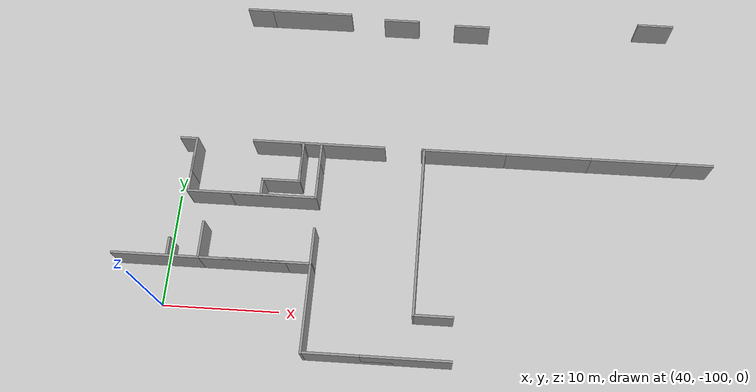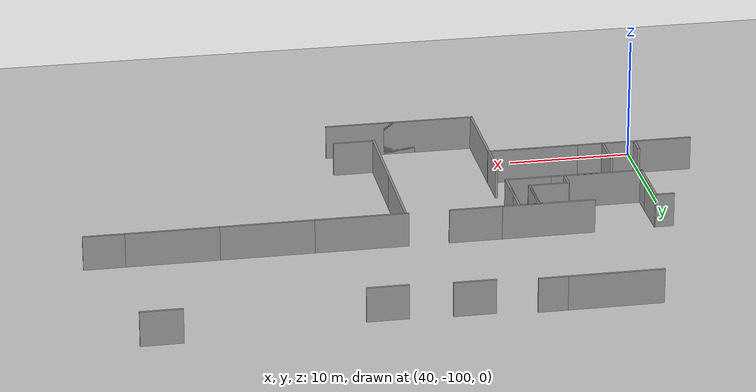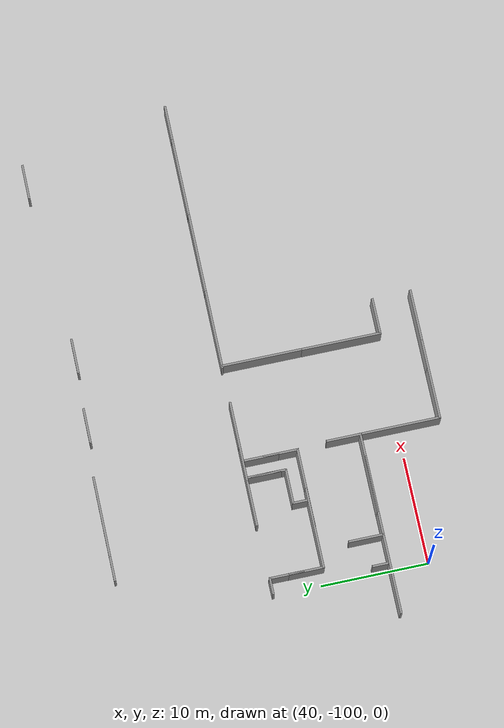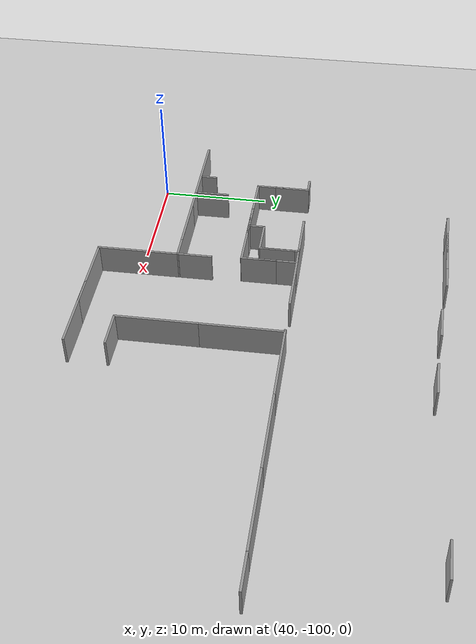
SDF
<sdf version="1.7">
 <world name="default">
  <model name="ground_plane">
   <static>1</static>
   <link name="link">
    <collision name="collision">
     <geometry><plane><normal>0 0 1</normal><size>100 100</size></plane></geometry>
     <surface>
      <contact><collide_bitmask>65535</collide_bitmask></contact>
      <friction><ode><mu>100</mu><mu2>50</mu2></ode></friction>
     </surface>
    </collision>
    <visual name="visual">
     <cast_shadows>0</cast_shadows>
     <geometry><plane><normal>0 0 1</normal><size>100 100</size></plane></geometry>
     <material>
      <script><uri>file://media/materials/scripts/gazebo.material</uri><name>Gazebo/Grey</name></script>
     </material>
    </visual>
   </link>
  </model>
  <model name="grey_wall_clone_1_clone_clone_clone_clone_clone_1_clone_clone">
   <static>1</static>
   <link name="link">
    <pose>0 0 1.4 0 -0 0</pose>
    <collision name="collision"><geometry><box><size>7.5 0.2 2.8</size></box></geometry></collision>
    <visual name="visual">
     <cast_shadows>0</cast_shadows>
     <geometry><box><size>7.5 0.2 2.8</size></box></geometry>
     <material>
      <script>
       <uri>model://grey_wall/materials/scripts</uri>
       <uri>model://grey_wall/materials/textures</uri>
       <name>vrc/grey_wall</name>
      </script>
     </material>
    </visual>
   </link>
   <pose>50.0283 -71.706 0 0 -0 0</pose>
  </model>
  <model name="grey_wall_clone_1_clone_clone_clone_clone_clone_1_clone_clone_0">
   <static>1</static>
   <link name="link">
    <pose>0 0 1.4 0 -0 0</pose>
    <collision name="collision"><geometry><box><size>7.5 0.2 2.8</size></box></geometry></collision>
    <visual name="visual">
     <cast_shadows>0</cast_shadows>
     <geometry><box><size>7.5 0.2 2.8</size></box></geometry>
     <material>
      <script>
       <uri>model://grey_wall/materials/scripts</uri>
       <uri>model://grey_wall/materials/textures</uri>
       <name>vrc/grey_wall</name>
      </script>
     </material>
    </visual>
   </link>
   <pose>47.7034 -71.7047 0 0 -0 0</pose>
  </model>
  <model name="fixed_half_clone_17_clone_5_clone">
   <link name="link">
    <pose>0 0 1.4 0 -0 0</pose>
    <inertial>
     <mass>1</mass>
     <inertia><ixx>1</ixx><ixy>0</ixy><ixz>0</ixz><iyy>1</iyy><iyz>0</iyz><izz>1</izz></inertia>
    </inertial>
    <visual name="visual">
     <cast_shadows>0</cast_shadows>
     <geometry><box><size>3.3 0.2 2.8</size></box></geometry>
     <material>
      <script>
       <uri>model://grey_wall/materials/scripts</uri>
       <uri>model://grey_wall/materials/textures</uri>
       <name>vrc/grey_wall</name>
      </script>
      <shader type="pixel"><normal_map>__default__</normal_map></shader>
      <ambient>1 1 1 1</ambient>
      <diffuse>1 1 1 1</diffuse>
      <specular>0 0 0 1</specular>
      <emissive>0 0 0 1</emissive>
     </material>
    </visual>
    <collision name="collision">
     <geometry><box><size>3.3 0.2 2.8</size></box></geometry>
     <surface>
      <friction>
       <ode><mu>1</mu><mu2>1</mu2><fdir1>0 0 0</fdir1><slip1>0</slip1><slip2>0</slip2></ode>
       <torsional>
        <coefficient>1</coefficient>
        <patch_radius>0</patch_radius>
        <surface_radius>0</surface_radius>
        <use_patch_radius>1</use_patch_radius>
        <ode><slip>0</slip></ode>
       </torsional>
      </friction>
      <bounce><restitution_coefficient>0</restitution_coefficient><threshold>1e+06</threshold></bounce>
      <contact>
       <collide_without_contact>0</collide_without_contact>
       <collide_without_contact_bitmask>1</collide_without_contact_bitmask>
       <collide_bitmask>1</collide_bitmask>
       <ode>
        <soft_cfm>0</soft_cfm>
        <soft_erp>0.2</soft_erp>
        <kp>1e+13</kp>
        <kd>1</kd>
        <max_vel>0.01</max_vel>
        <min_depth>0</min_depth>
       </ode>
       <bullet>
        <split_impulse>1</split_impulse>
        <split_impulse_penetration_threshold>-0.01</split_impulse_penetration_threshold>
        <soft_cfm>0</soft_cfm>
        <soft_erp>0.2</soft_erp>
        <kp>1e+13</kp>
        <kd>1</kd>
       </bullet>
      </contact>
     </surface>
    </collision>
   </link>
   <static>1</static>
   <pose>65.198 -72.3211 0 0 -0 3.14159</pose>
  </model>
  <model name="fixed_half_clone_17_clone_5_clone_0">
   <link name="link">
    <pose>0 0 1.4 0 -0 0</pose>
    <inertial>
     <mass>1</mass>
     <inertia><ixx>1</ixx><ixy>0</ixy><ixz>0</ixz><iyy>1</iyy><iyz>0</iyz><izz>1</izz></inertia>
    </inertial>
    <visual name="visual">
     <cast_shadows>0</cast_shadows>
     <geometry><box><size>3.3 0.2 2.8</size></box></geometry>
     <material>
      <script>
       <uri>model://grey_wall/materials/scripts</uri>
       <uri>model://grey_wall/materials/textures</uri>
       <name>vrc/grey_wall</name>
      </script>
      <shader type="pixel"><normal_map>__default__</normal_map></shader>
      <ambient>1 1 1 1</ambient>
      <diffuse>1 1 1 1</diffuse>
      <specular>0 0 0 1</specular>
      <emissive>0 0 0 1</emissive>
     </material>
    </visual>
    <collision name="collision">
     <geometry><box><size>3.3 0.2 2.8</size></box></geometry>
     <surface>
      <friction>
       <ode><mu>1</mu><mu2>1</mu2><fdir1>0 0 0</fdir1><slip1>0</slip1><slip2>0</slip2></ode>
       <torsional>
        <coefficient>1</coefficient>
        <patch_radius>0</patch_radius>
        <surface_radius>0</surface_radius>
        <use_patch_radius>1</use_patch_radius>
        <ode><slip>0</slip></ode>
       </torsional>
      </friction>
      <bounce><restitution_coefficient>0</restitution_coefficient><threshold>1e+06</threshold></bounce>
      <contact>
       <collide_without_contact>0</collide_without_contact>
       <collide_without_contact_bitmask>1</collide_without_contact_bitmask>
       <collide_bitmask>1</collide_bitmask>
       <ode>
        <soft_cfm>0</soft_cfm>
        <soft_erp>0.2</soft_erp>
        <kp>1e+13</kp>
        <kd>1</kd>
        <max_vel>0.01</max_vel>
        <min_depth>0</min_depth>
       </ode>
       <bullet>
        <split_impulse>1</split_impulse>
        <split_impulse_penetration_threshold>-0.01</split_impulse_penetration_threshold>
        <soft_cfm>0</soft_cfm>
        <soft_erp>0.2</soft_erp>
        <kp>1e+13</kp>
        <kd>1</kd>
       </bullet>
      </contact>
     </surface>
    </collision>
   </link>
   <static>1</static>
   <pose>58.561 -72.0958 0 0 -0 3.14159</pose>
  </model>
  <model name="fixed_half_clone_5_clone_1_clone_clone_0">
   <link name="link">
    <pose>0 0 1.4 0 -0 0</pose>
    <inertial>
     <mass>1</mass>
     <inertia><ixx>1</ixx><ixy>0</ixy><ixz>0</ixz><iyy>1</iyy><iyz>0</iyz><izz>1</izz></inertia>
    </inertial>
    <visual name="visual">
     <cast_shadows>0</cast_shadows>
     <geometry><box><size>3.3 0.2 2.8</size></box></geometry>
     <material>
      <script>
       <uri>model://grey_wall/materials/scripts</uri>
       <uri>model://grey_wall/materials/textures</uri>
       <name>vrc/grey_wall</name>
      </script>
      <shader type="pixel"><normal_map>__default__</normal_map></shader>
      <ambient>1 1 1 1</ambient>
      <diffuse>1 1 1 1</diffuse>
      <specular>0 0 0 1</specular>
      <emissive>0 0 0 1</emissive>
     </material>
    </visual>
    <collision name="collision">
     <geometry><box><size>3.3 0.2 2.8</size></box></geometry>
     <surface>
      <friction>
       <ode><mu>1</mu><mu2>1</mu2><fdir1>0 0 0</fdir1><slip1>0</slip1><slip2>0</slip2></ode>
       <torsional>
        <coefficient>1</coefficient>
        <patch_radius>0</patch_radius>
        <surface_radius>0</surface_radius>
        <use_patch_radius>1</use_patch_radius>
        <ode><slip>0</slip></ode>
       </torsional>
      </friction>
      <bounce><restitution_coefficient>0</restitution_coefficient><threshold>1e+06</threshold></bounce>
      <contact>
       <collide_without_contact>0</collide_without_contact>
       <collide_without_contact_bitmask>1</collide_without_contact_bitmask>
       <collide_bitmask>1</collide_bitmask>
       <ode>
        <soft_cfm>0</soft_cfm>
        <soft_erp>0.2</soft_erp>
        <kp>1e+13</kp>
        <kd>1</kd>
        <max_vel>0.01</max_vel>
        <min_depth>0</min_depth>
       </ode>
       <bullet>
        <split_impulse>1</split_impulse>
        <split_impulse_penetration_threshold>-0.01</split_impulse_penetration_threshold>
        <soft_cfm>0</soft_cfm>
        <soft_erp>0.2</soft_erp>
        <kp>1e+13</kp>
        <kd>1</kd>
       </bullet>
      </contact>
     </surface>
    </collision>
   </link>
   <static>1</static>
   <pose>82.4265 -71.172 0 0 -0 3.14159</pose>
  </model>
  <model name="grey_wall_clone_1_clone_2_clone_clone_clone_clone_clone_clone_clone_3_clone_0_clone_0_clone_5_clone_2_clone_2_clone_clone_10">
   <static>1</static>
   <link name="link">
    <pose>0 0 1.4 0 -0 0</pose>
    <collision name="collision"><geometry><box><size>7.5 0.2 2.8</size></box></geometry></collision>
    <visual name="visual">
     <cast_shadows>0</cast_shadows>
     <geometry><box><size>7.5 0.2 2.8</size></box></geometry>
     <material>
      <script>
       <uri>model://grey_wall/materials/scripts</uri>
       <uri>model://grey_wall/materials/textures</uri>
       <name>vrc/grey_wall</name>
      </script>
     </material>
    </visual>
   </link>
   <pose>79.9304 -85.3182 0 0 -0 0</pose>
  </model>
  <model name="grey_wall_clone_1_clone_2_clone_clone_clone_clone_clone_clone_clone_3_clone_0_clone_0_clone_5_clone_2_clone_2_clone_clone_11">
   <static>1</static>
   <link name="link">
    <pose>0 0 1.4 0 -0 0</pose>
    <collision name="collision"><geometry><box><size>7.5 0.2 2.8</size></box></geometry></collision>
    <visual name="visual">
     <cast_shadows>0</cast_shadows>
     <geometry><box><size>7.5 0.2 2.8</size></box></geometry>
     <material>
      <script>
       <uri>model://grey_wall/materials/scripts</uri>
       <uri>model://grey_wall/materials/textures</uri>
       <name>vrc/grey_wall</name>
      </script>
     </material>
    </visual>
   </link>
   <pose>72.4523 -85.3249 0 0 -0 0</pose>
  </model>
  <model name="grey_wall_clone_1_clone_2_clone_clone_clone_clone_clone_clone_clone_3_clone_0_clone_0_clone_5_clone_2_clone_2_clone_clone_12">
   <static>1</static>
   <link name="link">
    <pose>0 0 1.4 0 -0 0</pose>
    <collision name="collision"><geometry><box><size>7.5 0.2 2.8</size></box></geometry></collision>
    <visual name="visual">
     <cast_shadows>0</cast_shadows>
     <geometry><box><size>7.5 0.2 2.8</size></box></geometry>
     <material>
      <script>
       <uri>model://grey_wall/materials/scripts</uri>
       <uri>model://grey_wall/materials/textures</uri>
       <name>vrc/grey_wall</name>
      </script>
     </material>
    </visual>
   </link>
   <pose>64.9732 -85.3316 0 0 -0 0</pose>
  </model>
  <model name="grey_wall_clone_1_clone_2_clone_clone_clone_clone_clone_clone_clone_3_clone_0_clone_0_clone_5_clone_2_clone_2_clone_clone_14">
   <static>1</static>
   <link name="link">
    <pose>0 0 1.4 0 -0 0</pose>
    <collision name="collision"><geometry><box><size>7.5 0.2 2.8</size></box></geometry></collision>
    <visual name="visual">
     <cast_shadows>0</cast_shadows>
     <geometry><box><size>7.5 0.2 2.8</size></box></geometry>
     <material>
      <script>
       <uri>model://grey_wall/materials/scripts</uri>
       <uri>model://grey_wall/materials/textures</uri>
       <name>vrc/grey_wall</name>
      </script>
     </material>
    </visual>
   </link>
   <pose>49.9828 -85.3356 0 0 -0 0</pose>
  </model>
  <model name="fixed_half_clone_5_clone_1_clone_clone_0_clone">
   <link name="link">
    <pose>0 0 1.4 0 -0 0</pose>
    <inertial>
     <mass>1</mass>
     <inertia><ixx>1</ixx><ixy>0</ixy><ixz>0</ixz><iyy>1</iyy><iyz>0</iyz><izz>1</izz></inertia>
    </inertial>
    <visual name="visual">
     <cast_shadows>0</cast_shadows>
     <geometry><box><size>3.3 0.2 2.8</size></box></geometry>
     <material>
      <script>
       <uri>model://grey_wall/materials/scripts</uri>
       <uri>model://grey_wall/materials/textures</uri>
       <name>vrc/grey_wall</name>
      </script>
      <shader type="pixel"><normal_map>__default__</normal_map></shader>
      <ambient>1 1 1 1</ambient>
      <diffuse>1 1 1 1</diffuse>
      <specular>0 0 0 1</specular>
      <emissive>0 0 0 1</emissive>
     </material>
    </visual>
    <collision name="collision">
     <geometry><box><size>3.3 0.2 2.8</size></box></geometry>
     <surface>
      <friction>
       <ode><mu>1</mu><mu2>1</mu2><fdir1>0 0 0</fdir1><slip1>0</slip1><slip2>0</slip2></ode>
       <torsional>
        <coefficient>1</coefficient>
        <patch_radius>0</patch_radius>
        <surface_radius>0</surface_radius>
        <use_patch_radius>1</use_patch_radius>
        <ode><slip>0</slip></ode>
       </torsional>
      </friction>
      <bounce><restitution_coefficient>0</restitution_coefficient><threshold>1e+06</threshold></bounce>
      <contact>
       <collide_without_contact>0</collide_without_contact>
       <collide_without_contact_bitmask>1</collide_without_contact_bitmask>
       <collide_bitmask>1</collide_bitmask>
       <ode>
        <soft_cfm>0</soft_cfm>
        <soft_erp>0.2</soft_erp>
        <kp>1e+13</kp>
        <kd>1</kd>
        <max_vel>0.01</max_vel>
        <min_depth>0</min_depth>
       </ode>
       <bullet>
        <split_impulse>1</split_impulse>
        <split_impulse_penetration_threshold>-0.01</split_impulse_penetration_threshold>
        <soft_cfm>0</soft_cfm>
        <soft_erp>0.2</soft_erp>
        <kp>1e+13</kp>
        <kd>1</kd>
       </bullet>
      </contact>
     </surface>
    </collision>
   </link>
   <static>1</static>
   <pose>85.2427 -85.3176 0 0 -0 3.14159</pose>
  </model>
  <model name="grey_wall_clone_1_clone_2_clone_clone_clone_clone_clone_clone_clone_3_clone_0_clone_0_clone_5_clone_2_clone_2_clone_clone_17_clone_clone">
   <static>1</static>
   <link name="link">
    <pose>0 0 1.4 0 -0 0</pose>
    <collision name="collision"><geometry><box><size>7.5 0.2 2.8</size></box></geometry></collision>
    <visual name="visual">
     <cast_shadows>0</cast_shadows>
     <geometry><box><size>7.5 0.2 2.8</size></box></geometry>
     <material>
      <script>
       <uri>model://grey_wall/materials/scripts</uri>
       <uri>model://grey_wall/materials/textures</uri>
       <name>vrc/grey_wall</name>
      </script>
     </material>
    </visual>
   </link>
   <pose>39.408 -96.3773 0 0 -0 0</pose>
  </model>
  <model name="fixed_half_clone_8_clone_clone_6_clone_0_clone_2_clone_clone">
   <link name="link">
    <pose>0 0 1.4 0 -0 0</pose>
    <inertial>
     <mass>1</mass>
     <inertia><ixx>1</ixx><ixy>0</ixy><ixz>0</ixz><iyy>1</iyy><iyz>0</iyz><izz>1</izz></inertia>
    </inertial>
    <visual name="visual">
     <cast_shadows>0</cast_shadows>
     <geometry><box><size>3.3 0.2 2.8</size></box></geometry>
     <material>
      <script>
       <uri>model://grey_wall/materials/scripts</uri>
       <uri>model://grey_wall/materials/textures</uri>
       <name>vrc/grey_wall</name>
      </script>
      <shader type="pixel"><normal_map>__default__</normal_map></shader>
      <ambient>1 1 1 1</ambient>
      <diffuse>1 1 1 1</diffuse>
      <specular>0 0 0 1</specular>
      <emissive>0 0 0 1</emissive>
     </material>
    </visual>
    <collision name="collision">
     <geometry><box><size>3.3 0.2 2.8</size></box></geometry>
     <surface>
      <friction>
       <ode><mu>1</mu><mu2>1</mu2><fdir1>0 0 0</fdir1><slip1>0</slip1><slip2>0</slip2></ode>
       <torsional>
        <coefficient>1</coefficient>
        <patch_radius>0</patch_radius>
        <surface_radius>0</surface_radius>
        <use_patch_radius>1</use_patch_radius>
        <ode><slip>0</slip></ode>
       </torsional>
      </friction>
      <bounce><restitution_coefficient>0</restitution_coefficient><threshold>1e+06</threshold></bounce>
      <contact>
       <collide_without_contact>0</collide_without_contact>
       <collide_without_contact_bitmask>1</collide_without_contact_bitmask>
       <collide_bitmask>1</collide_bitmask>
       <ode>
        <soft_cfm>0</soft_cfm>
        <soft_erp>0.2</soft_erp>
        <kp>1e+13</kp>
        <kd>1</kd>
        <max_vel>0.01</max_vel>
        <min_depth>0</min_depth>
       </ode>
       <bullet>
        <split_impulse>1</split_impulse>
        <split_impulse_penetration_threshold>-0.01</split_impulse_penetration_threshold>
        <soft_cfm>0</soft_cfm>
        <soft_erp>0.2</soft_erp>
        <kp>1e+13</kp>
        <kd>1</kd>
       </bullet>
      </contact>
     </surface>
    </collision>
   </link>
   <static>1</static>
   <pose>43.0579 -94.793 0 0 0 -1.5708</pose>
  </model>
  <model name="fixed_half_clone_8_clone_clone_6_clone_0_clone_2_clone_clone_clone">
   <link name="link">
    <pose>0 0 1.4 0 -0 0</pose>
    <inertial>
     <mass>1</mass>
     <inertia><ixx>1</ixx><ixy>0</ixy><ixz>0</ixz><iyy>1</iyy><iyz>0</iyz><izz>1</izz></inertia>
    </inertial>
    <visual name="visual">
     <cast_shadows>0</cast_shadows>
     <geometry><box><size>3.3 0.2 2.8</size></box></geometry>
     <material>
      <script>
       <uri>model://grey_wall/materials/scripts</uri>
       <uri>model://grey_wall/materials/textures</uri>
       <name>vrc/grey_wall</name>
      </script>
      <shader type="pixel"><normal_map>__default__</normal_map></shader>
      <ambient>1 1 1 1</ambient>
      <diffuse>1 1 1 1</diffuse>
      <specular>0 0 0 1</specular>
      <emissive>0 0 0 1</emissive>
     </material>
    </visual>
    <collision name="collision">
     <geometry><box><size>3.3 0.2 2.8</size></box></geometry>
     <surface>
      <friction>
       <ode><mu>1</mu><mu2>1</mu2><fdir1>0 0 0</fdir1><slip1>0</slip1><slip2>0</slip2></ode>
       <torsional>
        <coefficient>1</coefficient>
        <patch_radius>0</patch_radius>
        <surface_radius>0</surface_radius>
        <use_patch_radius>1</use_patch_radius>
        <ode><slip>0</slip></ode>
       </torsional>
      </friction>
      <bounce><restitution_coefficient>0</restitution_coefficient><threshold>1e+06</threshold></bounce>
      <contact>
       <collide_without_contact>0</collide_without_contact>
       <collide_without_contact_bitmask>1</collide_without_contact_bitmask>
       <collide_bitmask>1</collide_bitmask>
       <ode>
        <soft_cfm>0</soft_cfm>
        <soft_erp>0.2</soft_erp>
        <kp>1e+13</kp>
        <kd>1</kd>
        <max_vel>0.01</max_vel>
        <min_depth>0</min_depth>
       </ode>
       <bullet>
        <split_impulse>1</split_impulse>
        <split_impulse_penetration_threshold>-0.01</split_impulse_penetration_threshold>
        <soft_cfm>0</soft_cfm>
        <soft_erp>0.2</soft_erp>
        <kp>1e+13</kp>
        <kd>1</kd>
       </bullet>
      </contact>
     </surface>
    </collision>
   </link>
   <static>1</static>
   <pose>41.2616 -87.0183 0 0 0 -1.5708</pose>
  </model>
  <model name="fixed_half_clone_8_clone_clone_6_clone_0_clone_2_clone_clone_clone_0">
   <link name="link">
    <pose>0 0 1.4 0 -0 0</pose>
    <inertial>
     <mass>1</mass>
     <inertia><ixx>1</ixx><ixy>0</ixy><ixz>0</ixz><iyy>1</iyy><iyz>0</iyz><izz>1</izz></inertia>
    </inertial>
    <visual name="visual">
     <cast_shadows>0</cast_shadows>
     <geometry><box><size>3.3 0.2 2.8</size></box></geometry>
     <material>
      <script>
       <uri>model://grey_wall/materials/scripts</uri>
       <uri>model://grey_wall/materials/textures</uri>
       <name>vrc/grey_wall</name>
      </script>
      <shader type="pixel"><normal_map>__default__</normal_map></shader>
      <ambient>1 1 1 1</ambient>
      <diffuse>1 1 1 1</diffuse>
      <specular>0 0 0 1</specular>
      <emissive>0 0 0 1</emissive>
     </material>
    </visual>
    <collision name="collision">
     <geometry><box><size>3.3 0.2 2.8</size></box></geometry>
     <surface>
      <friction>
       <ode><mu>1</mu><mu2>1</mu2><fdir1>0 0 0</fdir1><slip1>0</slip1><slip2>0</slip2></ode>
       <torsional>
        <coefficient>1</coefficient>
        <patch_radius>0</patch_radius>
        <surface_radius>0</surface_radius>
        <use_patch_radius>1</use_patch_radius>
        <ode><slip>0</slip></ode>
       </torsional>
      </friction>
      <bounce><restitution_coefficient>0</restitution_coefficient><threshold>1e+06</threshold></bounce>
      <contact>
       <collide_without_contact>0</collide_without_contact>
       <collide_without_contact_bitmask>1</collide_without_contact_bitmask>
       <collide_bitmask>1</collide_bitmask>
       <ode>
        <soft_cfm>0</soft_cfm>
        <soft_erp>0.2</soft_erp>
        <kp>1e+13</kp>
        <kd>1</kd>
        <max_vel>0.01</max_vel>
        <min_depth>0</min_depth>
       </ode>
       <bullet>
        <split_impulse>1</split_impulse>
        <split_impulse_penetration_threshold>-0.01</split_impulse_penetration_threshold>
        <soft_cfm>0</soft_cfm>
        <soft_erp>0.2</soft_erp>
        <kp>1e+13</kp>
        <kd>1</kd>
       </bullet>
      </contact>
     </surface>
    </collision>
   </link>
   <static>1</static>
   <pose>41.254 -88.8528 0 0 0 -1.5708</pose>
  </model>
  <model name="grey_wall_clone_1_clone_2_clone_clone_clone_clone_clone_clone_clone_3_clone_0_clone_0_clone_5_clone_2_clone_2_clone_clone_15_clone">
   <static>1</static>
   <link name="link">
    <pose>0 0 1.4 0 -0 0</pose>
    <collision name="collision"><geometry><box><size>7.5 0.2 2.8</size></box></geometry></collision>
    <visual name="visual">
     <cast_shadows>0</cast_shadows>
     <geometry><box><size>7.5 0.2 2.8</size></box></geometry>
     <material>
      <script>
       <uri>model://grey_wall/materials/scripts</uri>
       <uri>model://grey_wall/materials/textures</uri>
       <name>vrc/grey_wall</name>
      </script>
     </material>
    </visual>
   </link>
   <pose>44.9408 -90.4207 0 0 -0 0</pose>
  </model>
  <model name="half_wall_clone_0_clone_clone_clone_6_clone_clone_clone_1_clone">
   <link name="link">
    <pose>0 0 1.4 0 -0 0</pose>
    <inertial>
     <mass>1</mass>
     <inertia><ixx>1</ixx><ixy>0</ixy><ixz>0</ixz><iyy>1</iyy><iyz>0</iyz><izz>1</izz></inertia>
    </inertial>
    <visual name="visual">
     <cast_shadows>0</cast_shadows>
     <geometry><box><size>1.5 0.2 2.8</size></box></geometry>
     <material>
      <script>
       <uri>model://grey_wall/materials/scripts</uri>
       <uri>model://grey_wall/materials/textures</uri>
       <name>vrc/grey_wall</name>
      </script>
      <shader type="pixel"><normal_map>__default__</normal_map></shader>
      <ambient>1 1 1 1</ambient>
      <diffuse>1 1 1 1</diffuse>
      <specular>0 0 0 1</specular>
      <emissive>0 0 0 1</emissive>
     </material>
    </visual>
    <collision name="collision">
     <geometry><box><size>1.5 0.2 2.8</size></box></geometry>
     <surface>
      <friction>
       <ode><mu>1</mu><mu2>1</mu2><fdir1>0 0 0</fdir1><slip1>0</slip1><slip2>0</slip2></ode>
       <torsional>
        <coefficient>1</coefficient>
        <patch_radius>0</patch_radius>
        <surface_radius>0</surface_radius>
        <use_patch_radius>1</use_patch_radius>
        <ode><slip>0</slip></ode>
       </torsional>
      </friction>
      <bounce><restitution_coefficient>0</restitution_coefficient><threshold>1e+06</threshold></bounce>
      <contact>
       <collide_without_contact>0</collide_without_contact>
       <collide_without_contact_bitmask>1</collide_without_contact_bitmask>
       <collide_bitmask>1</collide_bitmask>
       <ode>
        <soft_cfm>0</soft_cfm>
        <soft_erp>0.2</soft_erp>
        <kp>1e+13</kp>
        <kd>1</kd>
        <max_vel>0.01</max_vel>
        <min_depth>0</min_depth>
       </ode>
       <bullet>
        <split_impulse>1</split_impulse>
        <split_impulse_penetration_threshold>-0.01</split_impulse_penetration_threshold>
        <soft_cfm>0</soft_cfm>
        <soft_erp>0.2</soft_erp>
        <kp>1e+13</kp>
        <kd>1</kd>
       </bullet>
      </contact>
     </surface>
    </collision>
   </link>
   <static>1</static>
   <pose>40.3953 -95.5023 0 0 0 -1.5708</pose>
  </model>
  <model name="half_wall_clone_0_clone_clone_clone_clone_clone_0_clone_clone">
   <link name="link">
    <pose>0 0 1.4 0 -0 0</pose>
    <inertial>
     <mass>1</mass>
     <inertia><ixx>1</ixx><ixy>0</ixy><ixz>0</ixz><iyy>1</iyy><iyz>0</iyz><izz>1</izz></inertia>
    </inertial>
    <visual name="visual">
     <cast_shadows>0</cast_shadows>
     <geometry><box><size>1.5 0.2 2.8</size></box></geometry>
     <material>
      <script>
       <uri>model://grey_wall/materials/scripts</uri>
       <uri>model://grey_wall/materials/textures</uri>
       <name>vrc/grey_wall</name>
      </script>
      <shader type="pixel"><normal_map>__default__</normal_map></shader>
      <ambient>1 1 1 1</ambient>
      <diffuse>1 1 1 1</diffuse>
      <specular>0 0 0 1</specular>
      <emissive>0 0 0 1</emissive>
     </material>
    </visual>
    <collision name="collision">
     <geometry><box><size>1.5 0.2 2.8</size></box></geometry>
     <surface>
      <friction>
       <ode><mu>1</mu><mu2>1</mu2><fdir1>0 0 0</fdir1><slip1>0</slip1><slip2>0</slip2></ode>
       <torsional>
        <coefficient>1</coefficient>
        <patch_radius>0</patch_radius>
        <surface_radius>0</surface_radius>
        <use_patch_radius>1</use_patch_radius>
        <ode><slip>0</slip></ode>
       </torsional>
      </friction>
      <bounce><restitution_coefficient>0</restitution_coefficient><threshold>1e+06</threshold></bounce>
      <contact>
       <collide_without_contact>0</collide_without_contact>
       <collide_without_contact_bitmask>1</collide_without_contact_bitmask>
       <collide_bitmask>1</collide_bitmask>
       <ode>
        <soft_cfm>0</soft_cfm>
        <soft_erp>0.2</soft_erp>
        <kp>1e+13</kp>
        <kd>1</kd>
        <max_vel>0.01</max_vel>
        <min_depth>0</min_depth>
       </ode>
       <bullet>
        <split_impulse>1</split_impulse>
        <split_impulse_penetration_threshold>-0.01</split_impulse_penetration_threshold>
        <soft_cfm>0</soft_cfm>
        <soft_erp>0.2</soft_erp>
        <kp>1e+13</kp>
        <kd>1</kd>
       </bullet>
      </contact>
     </surface>
    </collision>
   </link>
   <static>1</static>
   <pose>40.5224 -85.4563 0 0 -0 3.14159</pose>
  </model>
  <model name="grey_wall_clone_1_clone_2_clone_clone_clone_clone_clone_clone_clone_3_clone_0_clone_0_clone_5_clone_2_clone_2_clone_clone_15_clone_clone">
   <static>1</static>
   <link name="link">
    <pose>0 0 1.4 0 -0 0</pose>
    <collision name="collision"><geometry><box><size>7.5 0.2 2.8</size></box></geometry></collision>
    <visual name="visual">
     <cast_shadows>0</cast_shadows>
     <geometry><box><size>7.5 0.2 2.8</size></box></geometry>
     <material>
      <script>
       <uri>model://grey_wall/materials/scripts</uri>
       <uri>model://grey_wall/materials/textures</uri>
       <name>vrc/grey_wall</name>
      </script>
     </material>
    </visual>
   </link>
   <pose>48.7128 -90.4385 0 0 -0 0</pose>
  </model>
  <model name="fixed_half_clone_8_clone_clone_6_clone_0_clone_2_clone_clone_clone_0_clone">
   <link name="link">
    <pose>0 0 1.4 0 -0 0</pose>
    <inertial>
     <mass>1</mass>
     <inertia><ixx>1</ixx><ixy>0</ixy><ixz>0</ixz><iyy>1</iyy><iyz>0</iyz><izz>1</izz></inertia>
    </inertial>
    <visual name="visual">
     <cast_shadows>0</cast_shadows>
     <geometry><box><size>3.3 0.2 2.8</size></box></geometry>
     <material>
      <script>
       <uri>model://grey_wall/materials/scripts</uri>
       <uri>model://grey_wall/materials/textures</uri>
       <name>vrc/grey_wall</name>
      </script>
      <shader type="pixel"><normal_map>__default__</normal_map></shader>
      <ambient>1 1 1 1</ambient>
      <diffuse>1 1 1 1</diffuse>
      <specular>0 0 0 1</specular>
      <emissive>0 0 0 1</emissive>
     </material>
    </visual>
    <collision name="collision">
     <geometry><box><size>3.3 0.2 2.8</size></box></geometry>
     <surface>
      <friction>
       <ode><mu>1</mu><mu2>1</mu2><fdir1>0 0 0</fdir1><slip1>0</slip1><slip2>0</slip2></ode>
       <torsional>
        <coefficient>1</coefficient>
        <patch_radius>0</patch_radius>
        <surface_radius>0</surface_radius>
        <use_patch_radius>1</use_patch_radius>
        <ode><slip>0</slip></ode>
       </torsional>
      </friction>
      <bounce><restitution_coefficient>0</restitution_coefficient><threshold>1e+06</threshold></bounce>
      <contact>
       <collide_without_contact>0</collide_without_contact>
       <collide_without_contact_bitmask>1</collide_without_contact_bitmask>
       <collide_bitmask>1</collide_bitmask>
       <ode>
        <soft_cfm>0</soft_cfm>
        <soft_erp>0.2</soft_erp>
        <kp>1e+13</kp>
        <kd>1</kd>
        <max_vel>0.01</max_vel>
        <min_depth>0</min_depth>
       </ode>
       <bullet>
        <split_impulse>1</split_impulse>
        <split_impulse_penetration_threshold>-0.01</split_impulse_penetration_threshold>
        <soft_cfm>0</soft_cfm>
        <soft_erp>0.2</soft_erp>
        <kp>1e+13</kp>
        <kd>1</kd>
       </bullet>
      </contact>
     </surface>
    </collision>
   </link>
   <static>1</static>
   <pose>52.3694 -88.8616 0 0 0 -1.5708</pose>
  </model>
  <model name="fixed_half_clone_8_clone_clone_6_clone_0_clone_2_clone_clone_clone_0_clone_0">
   <link name="link">
    <pose>0 0 1.4 0 -0 0</pose>
    <inertial>
     <mass>1</mass>
     <inertia><ixx>1</ixx><ixy>0</ixy><ixz>0</ixz><iyy>1</iyy><iyz>0</iyz><izz>1</izz></inertia>
    </inertial>
    <visual name="visual">
     <cast_shadows>0</cast_shadows>
     <geometry><box><size>3.3 0.2 2.8</size></box></geometry>
     <material>
      <script>
       <uri>model://grey_wall/materials/scripts</uri>
       <uri>model://grey_wall/materials/textures</uri>
       <name>vrc/grey_wall</name>
      </script>
      <shader type="pixel"><normal_map>__default__</normal_map></shader>
      <ambient>1 1 1 1</ambient>
      <diffuse>1 1 1 1</diffuse>
      <specular>0 0 0 1</specular>
      <emissive>0 0 0 1</emissive>
     </material>
    </visual>
    <collision name="collision">
     <geometry><box><size>3.3 0.2 2.8</size></box></geometry>
     <surface>
      <friction>
       <ode><mu>1</mu><mu2>1</mu2><fdir1>0 0 0</fdir1><slip1>0</slip1><slip2>0</slip2></ode>
       <torsional>
        <coefficient>1</coefficient>
        <patch_radius>0</patch_radius>
        <surface_radius>0</surface_radius>
        <use_patch_radius>1</use_patch_radius>
        <ode><slip>0</slip></ode>
       </torsional>
      </friction>
      <bounce><restitution_coefficient>0</restitution_coefficient><threshold>1e+06</threshold></bounce>
      <contact>
       <collide_without_contact>0</collide_without_contact>
       <collide_without_contact_bitmask>1</collide_without_contact_bitmask>
       <collide_bitmask>1</collide_bitmask>
       <ode>
        <soft_cfm>0</soft_cfm>
        <soft_erp>0.2</soft_erp>
        <kp>1e+13</kp>
        <kd>1</kd>
        <max_vel>0.01</max_vel>
        <min_depth>0</min_depth>
       </ode>
       <bullet>
        <split_impulse>1</split_impulse>
        <split_impulse_penetration_threshold>-0.01</split_impulse_penetration_threshold>
        <soft_cfm>0</soft_cfm>
        <soft_erp>0.2</soft_erp>
        <kp>1e+13</kp>
        <kd>1</kd>
       </bullet>
      </contact>
     </surface>
    </collision>
   </link>
   <static>1</static>
   <pose>52.3608 -87.0312 0 0 0 -1.5708</pose>
  </model>
  <model name="half_wall_clone_0_clone_clone_clone_6_clone_clone_clone_1_clone_clone">
   <link name="link">
    <pose>0 0 1.4 0 -0 0</pose>
    <inertial>
     <mass>1</mass>
     <inertia><ixx>1</ixx><ixy>0</ixy><ixz>0</ixz><iyy>1</iyy><iyz>0</iyz><izz>1</izz></inertia>
    </inertial>
    <visual name="visual">
     <cast_shadows>0</cast_shadows>
     <geometry><box><size>1.5 0.2 2.8</size></box></geometry>
     <material>
      <script>
       <uri>model://grey_wall/materials/scripts</uri>
       <uri>model://grey_wall/materials/textures</uri>
       <name>vrc/grey_wall</name>
      </script>
      <shader type="pixel"><normal_map>__default__</normal_map></shader>
      <ambient>1 1 1 1</ambient>
      <diffuse>1 1 1 1</diffuse>
      <specular>0 0 0 1</specular>
      <emissive>0 0 0 1</emissive>
     </material>
    </visual>
    <collision name="collision">
     <geometry><box><size>1.5 0.2 2.8</size></box></geometry>
     <surface>
      <friction>
       <ode><mu>1</mu><mu2>1</mu2><fdir1>0 0 0</fdir1><slip1>0</slip1><slip2>0</slip2></ode>
       <torsional>
        <coefficient>1</coefficient>
        <patch_radius>0</patch_radius>
        <surface_radius>0</surface_radius>
        <use_patch_radius>1</use_patch_radius>
        <ode><slip>0</slip></ode>
       </torsional>
      </friction>
      <bounce><restitution_coefficient>0</restitution_coefficient><threshold>1e+06</threshold></bounce>
      <contact>
       <collide_without_contact>0</collide_without_contact>
       <collide_without_contact_bitmask>1</collide_without_contact_bitmask>
       <collide_bitmask>1</collide_bitmask>
       <ode>
        <soft_cfm>0</soft_cfm>
        <soft_erp>0.2</soft_erp>
        <kp>1e+13</kp>
        <kd>1</kd>
        <max_vel>0.01</max_vel>
        <min_depth>0</min_depth>
       </ode>
       <bullet>
        <split_impulse>1</split_impulse>
        <split_impulse_penetration_threshold>-0.01</split_impulse_penetration_threshold>
        <soft_cfm>0</soft_cfm>
        <soft_erp>0.2</soft_erp>
        <kp>1e+13</kp>
        <kd>1</kd>
       </bullet>
      </contact>
     </surface>
    </collision>
   </link>
   <static>1</static>
   <pose>47.5911 -89.6411 0 0 0 -1.5708</pose>
  </model>
  <model name="fixed_half_clone_8_clone_clone_6_clone_0_clone_clone_clone_1_clone_1_clone_1">
   <link name="link">
    <pose>0 0 1.4 0 -0 0</pose>
    <inertial>
     <mass>1</mass>
     <inertia><ixx>1</ixx><ixy>0</ixy><ixz>0</ixz><iyy>1</iyy><iyz>0</iyz><izz>1</izz></inertia>
    </inertial>
    <visual name="visual">
     <cast_shadows>0</cast_shadows>
     <geometry><box><size>3.3 0.2 2.8</size></box></geometry>
     <material>
      <script>
       <uri>model://grey_wall/materials/scripts</uri>
       <uri>model://grey_wall/materials/textures</uri>
       <name>vrc/grey_wall</name>
      </script>
      <shader type="pixel"><normal_map>__default__</normal_map></shader>
      <ambient>1 1 1 1</ambient>
      <diffuse>1 1 1 1</diffuse>
      <specular>0 0 0 1</specular>
      <emissive>0 0 0 1</emissive>
     </material>
    </visual>
    <collision name="collision">
     <geometry><box><size>3.3 0.2 2.8</size></box></geometry>
     <surface>
      <friction>
       <ode><mu>1</mu><mu2>1</mu2><fdir1>0 0 0</fdir1><slip1>0</slip1><slip2>0</slip2></ode>
       <torsional>
        <coefficient>1</coefficient>
        <patch_radius>0</patch_radius>
        <surface_radius>0</surface_radius>
        <use_patch_radius>1</use_patch_radius>
        <ode><slip>0</slip></ode>
       </torsional>
      </friction>
      <bounce><restitution_coefficient>0</restitution_coefficient><threshold>1e+06</threshold></bounce>
      <contact>
       <collide_without_contact>0</collide_without_contact>
       <collide_without_contact_bitmask>1</collide_without_contact_bitmask>
       <collide_bitmask>1</collide_bitmask>
       <ode>
        <soft_cfm>0</soft_cfm>
        <soft_erp>0.2</soft_erp>
        <kp>1e+13</kp>
        <kd>1</kd>
        <max_vel>0.01</max_vel>
        <min_depth>0</min_depth>
       </ode>
       <bullet>
        <split_impulse>1</split_impulse>
        <split_impulse_penetration_threshold>-0.01</split_impulse_penetration_threshold>
        <soft_cfm>0</soft_cfm>
        <soft_erp>0.2</soft_erp>
        <kp>1e+13</kp>
        <kd>1</kd>
       </bullet>
      </contact>
     </surface>
    </collision>
   </link>
   <static>1</static>
   <pose>49.2052 -88.9907 0 0 -0 3.14159</pose>
  </model>
  <model name="fixed_half_clone_8_clone_clone_6_clone_0_clone_2_clone_clone_clone_1">
   <link name="link">
    <pose>0 0 1.4 0 -0 0</pose>
    <inertial>
     <mass>1</mass>
     <inertia><ixx>1</ixx><ixy>0</ixy><ixz>0</ixz><iyy>1</iyy><iyz>0</iyz><izz>1</izz></inertia>
    </inertial>
    <visual name="visual">
     <cast_shadows>0</cast_shadows>
     <geometry><box><size>3.3 0.2 2.8</size></box></geometry>
     <material>
      <script>
       <uri>model://grey_wall/materials/scripts</uri>
       <uri>model://grey_wall/materials/textures</uri>
       <name>vrc/grey_wall</name>
      </script>
      <shader type="pixel"><normal_map>__default__</normal_map></shader>
      <ambient>1 1 1 1</ambient>
      <diffuse>1 1 1 1</diffuse>
      <specular>0 0 0 1</specular>
      <emissive>0 0 0 1</emissive>
     </material>
    </visual>
    <collision name="collision">
     <geometry><box><size>3.3 0.2 2.8</size></box></geometry>
     <surface>
      <friction>
       <ode><mu>1</mu><mu2>1</mu2><fdir1>0 0 0</fdir1><slip1>0</slip1><slip2>0</slip2></ode>
       <torsional>
        <coefficient>1</coefficient>
        <patch_radius>0</patch_radius>
        <surface_radius>0</surface_radius>
        <use_patch_radius>1</use_patch_radius>
        <ode><slip>0</slip></ode>
       </torsional>
      </friction>
      <bounce><restitution_coefficient>0</restitution_coefficient><threshold>1e+06</threshold></bounce>
      <contact>
       <collide_without_contact>0</collide_without_contact>
       <collide_without_contact_bitmask>1</collide_without_contact_bitmask>
       <collide_bitmask>1</collide_bitmask>
       <ode>
        <soft_cfm>0</soft_cfm>
        <soft_erp>0.2</soft_erp>
        <kp>1e+13</kp>
        <kd>1</kd>
        <max_vel>0.01</max_vel>
        <min_depth>0</min_depth>
       </ode>
       <bullet>
        <split_impulse>1</split_impulse>
        <split_impulse_penetration_threshold>-0.01</split_impulse_penetration_threshold>
        <soft_cfm>0</soft_cfm>
        <soft_erp>0.2</soft_erp>
        <kp>1e+13</kp>
        <kd>1</kd>
       </bullet>
      </contact>
     </surface>
    </collision>
   </link>
   <static>1</static>
   <pose>50.7589 -87.3408 0 0 0 -1.5708</pose>
  </model>
  <model name="fixed_half_clone_8_clone_clone_6_clone_0_clone_2_clone_clone_clone_2">
   <link name="link">
    <pose>0 0 1.4 0 -0 0</pose>
    <inertial>
     <mass>1</mass>
     <inertia><ixx>1</ixx><ixy>0</ixy><ixz>0</ixz><iyy>1</iyy><iyz>0</iyz><izz>1</izz></inertia>
    </inertial>
    <visual name="visual">
     <cast_shadows>0</cast_shadows>
     <geometry><box><size>3.3 0.2 2.8</size></box></geometry>
     <material>
      <script>
       <uri>model://grey_wall/materials/scripts</uri>
       <uri>model://grey_wall/materials/textures</uri>
       <name>vrc/grey_wall</name>
      </script>
      <shader type="pixel"><normal_map>__default__</normal_map></shader>
      <ambient>1 1 1 1</ambient>
      <diffuse>1 1 1 1</diffuse>
      <specular>0 0 0 1</specular>
      <emissive>0 0 0 1</emissive>
     </material>
    </visual>
    <collision name="collision">
     <geometry><box><size>3.3 0.2 2.8</size></box></geometry>
     <surface>
      <friction>
       <ode><mu>1</mu><mu2>1</mu2><fdir1>0 0 0</fdir1><slip1>0</slip1><slip2>0</slip2></ode>
       <torsional>
        <coefficient>1</coefficient>
        <patch_radius>0</patch_radius>
        <surface_radius>0</surface_radius>
        <use_patch_radius>1</use_patch_radius>
        <ode><slip>0</slip></ode>
       </torsional>
      </friction>
      <bounce><restitution_coefficient>0</restitution_coefficient><threshold>1e+06</threshold></bounce>
      <contact>
       <collide_without_contact>0</collide_without_contact>
       <collide_without_contact_bitmask>1</collide_without_contact_bitmask>
       <collide_bitmask>1</collide_bitmask>
       <ode>
        <soft_cfm>0</soft_cfm>
        <soft_erp>0.2</soft_erp>
        <kp>1e+13</kp>
        <kd>1</kd>
        <max_vel>0.01</max_vel>
        <min_depth>0</min_depth>
       </ode>
       <bullet>
        <split_impulse>1</split_impulse>
        <split_impulse_penetration_threshold>-0.01</split_impulse_penetration_threshold>
        <soft_cfm>0</soft_cfm>
        <soft_erp>0.2</soft_erp>
        <kp>1e+13</kp>
        <kd>1</kd>
       </bullet>
      </contact>
     </surface>
    </collision>
   </link>
   <static>1</static>
   <pose>50.7571 -86.9391 0 0 0 -1.5708</pose>
  </model>
  <model name="grey_wall_clone_1_clone_2_clone_clone_clone_clone_clone_clone_clone_3_clone_0_clone_0_clone_5_clone_2_clone_2_clone_clone_17_clone_clone_clone">
   <static>1</static>
   <link name="link">
    <pose>0 0 1.4 0 -0 0</pose>
    <collision name="collision"><geometry><box><size>7.5 0.2 2.8</size></box></geometry></collision>
    <visual name="visual">
     <cast_shadows>0</cast_shadows>
     <geometry><box><size>7.5 0.2 2.8</size></box></geometry>
     <material>
      <script>
       <uri>model://grey_wall/materials/scripts</uri>
       <uri>model://grey_wall/materials/textures</uri>
       <name>vrc/grey_wall</name>
      </script>
     </material>
    </visual>
   </link>
   <pose>46.7652 -96.376 0 0 -0 0</pose>
  </model>
  <model name="grey_wall_clone_1_clone_2_clone_clone_clone_clone_clone_clone_clone_3_clone_0_clone_0_clone_5_clone_2_clone_2_clone_clone_17_clone_clone_clone_0">
   <static>1</static>
   <link name="link">
    <pose>0 0 1.4 0 -0 0</pose>
    <collision name="collision"><geometry><box><size>7.5 0.2 2.8</size></box></geometry></collision>
    <visual name="visual">
     <cast_shadows>0</cast_shadows>
     <geometry><box><size>7.5 0.2 2.8</size></box></geometry>
     <material>
      <script>
       <uri>model://grey_wall/materials/scripts</uri>
       <uri>model://grey_wall/materials/textures</uri>
       <name>vrc/grey_wall</name>
      </script>
     </material>
    </visual>
   </link>
   <pose>48.9226 -96.3674 0 0 -0 0</pose>
  </model>
  <model name="fixed_half_clone_8_clone_clone_6_clone_0_clone_2_clone_clone_clone_3">
   <link name="link">
    <pose>0 0 1.4 0 -0 0</pose>
    <inertial>
     <mass>1</mass>
     <inertia><ixx>1</ixx><ixy>0</ixy><ixz>0</ixz><iyy>1</iyy><iyz>0</iyz><izz>1</izz></inertia>
    </inertial>
    <visual name="visual">
     <cast_shadows>0</cast_shadows>
     <geometry><box><size>3.3 0.2 2.8</size></box></geometry>
     <material>
      <script>
       <uri>model://grey_wall/materials/scripts</uri>
       <uri>model://grey_wall/materials/textures</uri>
       <name>vrc/grey_wall</name>
      </script>
      <shader type="pixel"><normal_map>__default__</normal_map></shader>
      <ambient>1 1 1 1</ambient>
      <diffuse>1 1 1 1</diffuse>
      <specular>0 0 0 1</specular>
      <emissive>0 0 0 1</emissive>
     </material>
    </visual>
    <collision name="collision">
     <geometry><box><size>3.3 0.2 2.8</size></box></geometry>
     <surface>
      <friction>
       <ode><mu>1</mu><mu2>1</mu2><fdir1>0 0 0</fdir1><slip1>0</slip1><slip2>0</slip2></ode>
       <torsional>
        <coefficient>1</coefficient>
        <patch_radius>0</patch_radius>
        <surface_radius>0</surface_radius>
        <use_patch_radius>1</use_patch_radius>
        <ode><slip>0</slip></ode>
       </torsional>
      </friction>
      <bounce><restitution_coefficient>0</restitution_coefficient><threshold>1e+06</threshold></bounce>
      <contact>
       <collide_without_contact>0</collide_without_contact>
       <collide_without_contact_bitmask>1</collide_without_contact_bitmask>
       <collide_bitmask>1</collide_bitmask>
       <ode>
        <soft_cfm>0</soft_cfm>
        <soft_erp>0.2</soft_erp>
        <kp>1e+13</kp>
        <kd>1</kd>
        <max_vel>0.01</max_vel>
        <min_depth>0</min_depth>
       </ode>
       <bullet>
        <split_impulse>1</split_impulse>
        <split_impulse_penetration_threshold>-0.01</split_impulse_penetration_threshold>
        <soft_cfm>0</soft_cfm>
        <soft_erp>0.2</soft_erp>
        <kp>1e+13</kp>
        <kd>1</kd>
       </bullet>
      </contact>
     </surface>
    </collision>
   </link>
   <static>1</static>
   <pose>52.5684 -94.8254 0 0 0 -1.5708</pose>
  </model>
  <model name="grey_wall_clone_2_clone_clone_clone_0_clone_1_clone_3_clone_clone_0_clone_0_clone_clone">
   <static>1</static>
   <link name="link">
    <pose>0 0 1.4 0 -0 0</pose>
    <collision name="collision"><geometry><box><size>7.5 0.2 2.8</size></box></geometry></collision>
    <visual name="visual">
     <cast_shadows>0</cast_shadows>
     <geometry><box><size>7.5 0.2 2.8</size></box></geometry>
     <material>
      <script>
       <uri>model://grey_wall/materials/scripts</uri>
       <uri>model://grey_wall/materials/textures</uri>
       <name>vrc/grey_wall</name>
      </script>
     </material>
    </visual>
   </link>
   <pose>52.5759 -100.153 0 0 0 -1.5708</pose>
  </model>
  <model name="grey_wall_clone_2_clone_clone_clone_0_clone_1_clone_3_clone_clone_0_clone_0_clone_clone_0">
   <static>1</static>
   <link name="link">
    <pose>0 0 1.4 0 -0 0</pose>
    <collision name="collision"><geometry><box><size>7.5 0.2 2.8</size></box></geometry></collision>
    <visual name="visual">
     <cast_shadows>0</cast_shadows>
     <geometry><box><size>7.5 0.2 2.8</size></box></geometry>
     <material>
      <script>
       <uri>model://grey_wall/materials/scripts</uri>
       <uri>model://grey_wall/materials/textures</uri>
       <name>vrc/grey_wall</name>
      </script>
     </material>
    </visual>
   </link>
   <pose>61.4612 -89.0602 0 0 0 -1.5708</pose>
  </model>
  <model name="grey_wall_clone_2_clone_clone_clone_0_clone_1_clone_3_clone_clone_0_clone_0_clone_clone_1">
   <static>1</static>
   <link name="link">
    <pose>0 0 1.4 0 -0 0</pose>
    <collision name="collision"><geometry><box><size>7.5 0.2 2.8</size></box></geometry></collision>
    <visual name="visual">
     <cast_shadows>0</cast_shadows>
     <geometry><box><size>7.5 0.2 2.8</size></box></geometry>
     <material>
      <script>
       <uri>model://grey_wall/materials/scripts</uri>
       <uri>model://grey_wall/materials/textures</uri>
       <name>vrc/grey_wall</name>
      </script>
     </material>
    </visual>
   </link>
   <pose>61.4538 -96.5477 0 0 0 -1.5708</pose>
  </model>
  <model name="grey_wall_clone_1_clone_2_clone_clone_clone_clone_clone_clone_clone_3_clone_0_clone_0_clone_5_clone_2_clone_2_clone_clone_17_clone_clone_clone_clone">
   <static>1</static>
   <link name="link">
    <pose>0 0 1.4 0 -0 0</pose>
    <collision name="collision"><geometry><box><size>7.5 0.2 2.8</size></box></geometry></collision>
    <visual name="visual">
     <cast_shadows>0</cast_shadows>
     <geometry><box><size>7.5 0.2 2.8</size></box></geometry>
     <material>
      <script>
       <uri>model://grey_wall/materials/scripts</uri>
       <uri>model://grey_wall/materials/textures</uri>
       <name>vrc/grey_wall</name>
      </script>
     </material>
    </visual>
   </link>
   <pose>56.2492 -103.796 0 0 -0 0</pose>
  </model>
  <model name="fixed_half_clone_8_clone_clone_6_clone_0_clone_clone_clone_1_clone_1_clone_1_clone">
   <link name="link">
    <pose>0 0 1.4 0 -0 0</pose>
    <inertial>
     <mass>1</mass>
     <inertia><ixx>1</ixx><ixy>0</ixy><ixz>0</ixz><iyy>1</iyy><iyz>0</iyz><izz>1</izz></inertia>
    </inertial>
    <visual name="visual">
     <cast_shadows>0</cast_shadows>
     <geometry><box><size>3.3 0.2 2.8</size></box></geometry>
     <material>
      <script>
       <uri>model://grey_wall/materials/scripts</uri>
       <uri>model://grey_wall/materials/textures</uri>
       <name>vrc/grey_wall</name>
      </script>
      <shader type="pixel"><normal_map>__default__</normal_map></shader>
      <ambient>1 1 1 1</ambient>
      <diffuse>1 1 1 1</diffuse>
      <specular>0 0 0 1</specular>
      <emissive>0 0 0 1</emissive>
     </material>
    </visual>
    <collision name="collision">
     <geometry><box><size>3.3 0.2 2.8</size></box></geometry>
     <surface>
      <friction>
       <ode><mu>1</mu><mu2>1</mu2><fdir1>0 0 0</fdir1><slip1>0</slip1><slip2>0</slip2></ode>
       <torsional>
        <coefficient>1</coefficient>
        <patch_radius>0</patch_radius>
        <surface_radius>0</surface_radius>
        <use_patch_radius>1</use_patch_radius>
        <ode><slip>0</slip></ode>
       </torsional>
      </friction>
      <bounce><restitution_coefficient>0</restitution_coefficient><threshold>1e+06</threshold></bounce>
      <contact>
       <collide_without_contact>0</collide_without_contact>
       <collide_without_contact_bitmask>1</collide_without_contact_bitmask>
       <collide_bitmask>1</collide_bitmask>
       <ode>
        <soft_cfm>0</soft_cfm>
        <soft_erp>0.2</soft_erp>
        <kp>1e+13</kp>
        <kd>1</kd>
        <max_vel>0.01</max_vel>
        <min_depth>0</min_depth>
       </ode>
       <bullet>
        <split_impulse>1</split_impulse>
        <split_impulse_penetration_threshold>-0.01</split_impulse_penetration_threshold>
        <soft_cfm>0</soft_cfm>
        <soft_erp>0.2</soft_erp>
        <kp>1e+13</kp>
        <kd>1</kd>
       </bullet>
      </contact>
     </surface>
    </collision>
   </link>
   <static>1</static>
   <pose>63.1477 -100.199 0 0 -0 3.14159</pose>
  </model>
  <model name="grey_wall_clone_1_clone_2_clone_clone_clone_clone_clone_clone_clone_3_clone_0_clone_0_clone_5_clone_2_clone_2_clone_clone_17_clone_clone_clone_clone_clone">
   <static>1</static>
   <link name="link">
    <pose>0 0 1.4 0 -0 0</pose>
    <collision name="collision"><geometry><box><size>7.5 0.2 2.8</size></box></geometry></collision>
    <visual name="visual">
     <cast_shadows>0</cast_shadows>
     <geometry><box><size>7.5 0.2 2.8</size></box></geometry>
     <material>
      <script>
       <uri>model://grey_wall/materials/scripts</uri>
       <uri>model://grey_wall/materials/textures</uri>
       <name>vrc/grey_wall</name>
      </script>
     </material>
    </visual>
   </link>
   <pose>61.1101 -103.796 0 0 -0 0</pose>
  </model>
  <model name="grey_wall_clone_1_clone_2_clone_clone_clone_clone_clone_clone_clone_3_clone_0_clone_0_clone_5_clone_2_clone_2_clone_clone_14_clone">
   <static>1</static>
   <link name="link">
    <pose>0 0 1.4 0 -0 0</pose>
    <collision name="collision"><geometry><box><size>7.5 0.2 2.8</size></box></geometry></collision>
    <visual name="visual">
     <cast_shadows>0</cast_shadows>
     <geometry><box><size>7.5 0.2 2.8</size></box></geometry>
     <material>
      <script>
       <uri>model://grey_wall/materials/scripts</uri>
       <uri>model://grey_wall/materials/textures</uri>
       <name>vrc/grey_wall</name>
      </script>
     </material>
    </visual>
   </link>
   <pose>54.238 -85.3384 0 0 -0 0</pose>
  </model>
 </world>
</sdf>
